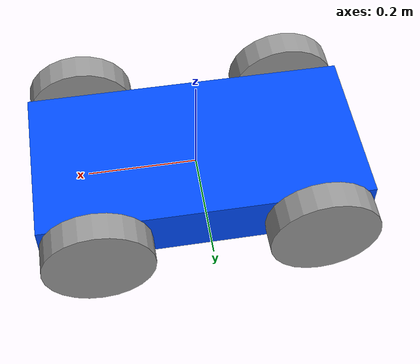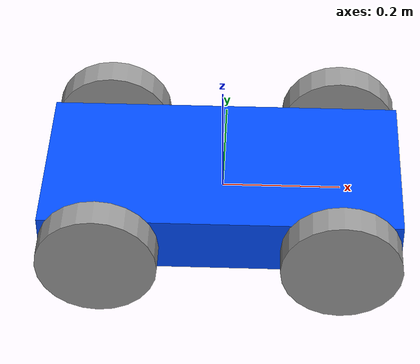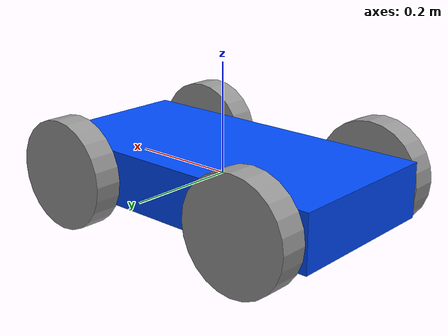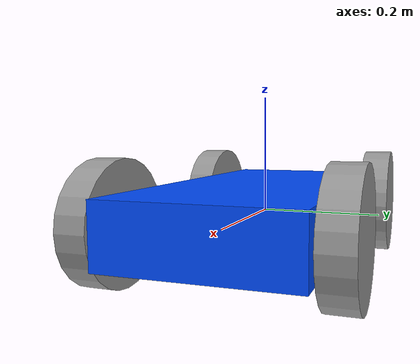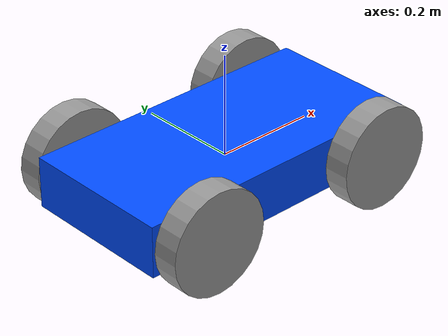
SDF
<?xml version='1.0'?>
<sdf version='1.6'>
  <model name='robot'>
    <static>false</static>
    <link name='chassis'>
      <inertial>
        <mass>1</mass>
        <inertia>
          <ixx>0.166667</ixx>
          <ixy>0</ixy>
          <ixz>0</ixz>
          <iyy>0.166667</iyy>
          <iyz>0</iyz>
          <izz>0.166667</izz>
        </inertia>
        <pose frame=''>0 0 0 0 -0 0</pose>
      </inertial>
      <pose frame=''>-0 0 0 0 -0 0</pose>
      <gravity>1</gravity>
      <self_collide>0</self_collide>
      <kinematic>0</kinematic>
      <enable_wind>0</enable_wind>
      <visual name='visual'>
        <pose frame=''>0 0 0 0 -0 0</pose>
        <geometry>
          <box>
            <size>0.6 0.3 0.1</size>
          </box>
        </geometry>
        <material>
          <lighting>1</lighting>
          <script>
            <uri>file://media/materials/scripts/gazebo.material</uri>
            <name>Gazebo/Grey</name>
          </script>
          <shader type='vertex'>
            <normal_map>__default__</normal_map>
          </shader>
          <ambient>0.3 0.3 0.3 1</ambient>
          <diffuse>0 0.298 1 1</diffuse>
          <specular>0.01 0.01 0.01 1</specular>
          <emissive>0 0 0 1</emissive>
        </material>
        <transparency>0</transparency>
        <cast_shadows>1</cast_shadows>
      </visual>
      <collision name='collision'>
        <laser_retro>0</laser_retro>
        <max_contacts>10</max_contacts>
        <pose frame=''>0 0 0 0 -0 0</pose>
        <geometry>
          <box>
            <size>0.6 0.3 0.1</size>
          </box>
        </geometry>
        <surface>
          <friction>
            <ode>
              <mu>1</mu>
              <mu2>1</mu2>
              <fdir1>0 0 0</fdir1>
              <slip1>0</slip1>
              <slip2>0</slip2>
            </ode>
            <torsional>
              <coefficient>1</coefficient>
              <patch_radius>0</patch_radius>
              <surface_radius>0</surface_radius>
              <use_patch_radius>1</use_patch_radius>
              <ode>
                <slip>0</slip>
              </ode>
            </torsional>
          </friction>
          <bounce>
            <restitution_coefficient>0</restitution_coefficient>
            <threshold>1e+06</threshold>
          </bounce>
          <contact>
            <collide_without_contact>0</collide_without_contact>
            <collide_without_contact_bitmask>1</collide_without_contact_bitmask>
            <collide_bitmask>1</collide_bitmask>
            <ode>
              <soft_cfm>0</soft_cfm>
              <soft_erp>0.2</soft_erp>
              <kp>1e+13</kp>
              <kd>1</kd>
              <max_vel>0.01</max_vel>
              <min_depth>0</min_depth>
            </ode>
            <bullet>
              <split_impulse>1</split_impulse>
              <split_impulse_penetration_threshold>-0.01</split_impulse_penetration_threshold>
              <soft_cfm>0</soft_cfm>
              <soft_erp>0.2</soft_erp>
              <kp>1e+13</kp>
              <kd>1</kd>
            </bullet>
          </contact>
        </surface>
      </collision>
    </link>
    <link name='front_left'>
      <inertial>
        <mass>1</mass>
        <inertia>
          <ixx>0.145833</ixx>
          <ixy>0</ixy>
          <ixz>0</ixz>
          <iyy>0.145833</iyy>
          <iyz>0</iyz>
          <izz>0.125</izz>
        </inertia>
        <pose frame=''>0 0 0 0 -0 0</pose>
      </inertial>
      <pose frame=''>-0.2 -0.18016 0 1.57 -0 0</pose>
      <gravity>1</gravity>
      <self_collide>0</self_collide>
      <kinematic>0</kinematic>
      <enable_wind>0</enable_wind>
      <visual name='visual'>
        <pose frame=''>0 0 0 0 -0 0</pose>
        <geometry>
          <cylinder>
            <radius>0.1</radius>
            <length>0.05</length>
          </cylinder>
        </geometry>
        <material>
          <lighting>1</lighting>
          <script>
            <uri>file://media/materials/scripts/gazebo.material</uri>
            <name>Gazebo/Grey</name>
          </script>
          <shader type='vertex'>
            <normal_map>__default__</normal_map>
          </shader>
          <ambient>0.3 0.3 0.3 1</ambient>
          <diffuse>0 0 0 1</diffuse>
          <specular>0.01 0.01 0.01 1</specular>
          <emissive>0 0 0 1</emissive>
        </material>
        <transparency>0</transparency>
        <cast_shadows>1</cast_shadows>
      </visual>
      <collision name='collision'>
        <laser_retro>0</laser_retro>
        <max_contacts>10</max_contacts>
        <pose frame=''>0 0 0 0 -0 0</pose>
        <geometry>
          <cylinder>
            <radius>0.1</radius>
            <length>0.05</length>
          </cylinder>
        </geometry>
        <surface>
          <friction>
            <ode>
              <mu>1</mu>
              <mu2>1</mu2>
              <fdir1>0 0 0</fdir1>
              <slip1>0</slip1>
              <slip2>0</slip2>
            </ode>
            <torsional>
              <coefficient>1</coefficient>
              <patch_radius>0</patch_radius>
              <surface_radius>0</surface_radius>
              <use_patch_radius>1</use_patch_radius>
              <ode>
                <slip>0</slip>
              </ode>
            </torsional>
          </friction>
          <bounce>
            <restitution_coefficient>0</restitution_coefficient>
            <threshold>1e+06</threshold>
          </bounce>
          <contact>
            <collide_without_contact>0</collide_without_contact>
            <collide_without_contact_bitmask>1</collide_without_contact_bitmask>
            <collide_bitmask>1</collide_bitmask>
            <ode>
              <soft_cfm>0</soft_cfm>
              <soft_erp>0.2</soft_erp>
              <kp>1e+13</kp>
              <kd>1</kd>
              <max_vel>0.01</max_vel>
              <min_depth>0</min_depth>
            </ode>
            <bullet>
              <split_impulse>1</split_impulse>
              <split_impulse_penetration_threshold>-0.01</split_impulse_penetration_threshold>
              <soft_cfm>0</soft_cfm>
              <soft_erp>0.2</soft_erp>
              <kp>1e+13</kp>
              <kd>1</kd>
            </bullet>
          </contact>
        </surface>
      </collision>
    </link>
    <link name='front_right'>
      <inertial>
        <mass>1</mass>
        <inertia>
          <ixx>0.145833</ixx>
          <ixy>0</ixy>
          <ixz>0</ixz>
          <iyy>0.145833</iyy>
          <iyz>0</iyz>
          <izz>0.125</izz>
        </inertia>
        <pose frame=''>0 0 0 0 -0 0</pose>
      </inertial>
      <pose frame=''>-0.2 0.18016 0 1.57 -0 0</pose>
      <gravity>1</gravity>
      <self_collide>0</self_collide>
      <kinematic>0</kinematic>
      <enable_wind>0</enable_wind>
      <visual name='visual'>
        <pose frame=''>0 0 0 0 -0 0</pose>
        <geometry>
          <cylinder>
            <radius>0.1</radius>
            <length>0.05</length>
          </cylinder>
        </geometry>
        <material>
          <lighting>1</lighting>
          <script>
            <uri>file://media/materials/scripts/gazebo.material</uri>
            <name>Gazebo/Grey</name>
          </script>
          <shader type='vertex'>
            <normal_map>__default__</normal_map>
          </shader>
          <ambient>0.3 0.3 0.3 1</ambient>
          <diffuse>0 0 0 1</diffuse>
          <specular>0.01 0.01 0.01 1</specular>
          <emissive>0 0 0 1</emissive>
        </material>
        <transparency>0</transparency>
        <cast_shadows>1</cast_shadows>
      </visual>
      <collision name='collision'>
        <laser_retro>0</laser_retro>
        <max_contacts>10</max_contacts>
        <pose frame=''>0 0 0 0 -0 0</pose>
        <geometry>
          <cylinder>
            <radius>0.1</radius>
            <length>0.05</length>
          </cylinder>
        </geometry>
        <surface>
          <friction>
            <ode>
              <mu>1</mu>
              <mu2>1</mu2>
              <fdir1>0 0 0</fdir1>
              <slip1>0</slip1>
              <slip2>0</slip2>
            </ode>
            <torsional>
              <coefficient>1</coefficient>
              <patch_radius>0</patch_radius>
              <surface_radius>0</surface_radius>
              <use_patch_radius>1</use_patch_radius>
              <ode>
                <slip>0</slip>
              </ode>
            </torsional>
          </friction>
          <bounce>
            <restitution_coefficient>0</restitution_coefficient>
            <threshold>1e+06</threshold>
          </bounce>
          <contact>
            <collide_without_contact>0</collide_without_contact>
            <collide_without_contact_bitmask>1</collide_without_contact_bitmask>
            <collide_bitmask>1</collide_bitmask>
            <ode>
              <soft_cfm>0</soft_cfm>
              <soft_erp>0.2</soft_erp>
              <kp>1e+13</kp>
              <kd>1</kd>
              <max_vel>0.01</max_vel>
              <min_depth>0</min_depth>
            </ode>
            <bullet>
              <split_impulse>1</split_impulse>
              <split_impulse_penetration_threshold>-0.01</split_impulse_penetration_threshold>
              <soft_cfm>0</soft_cfm>
              <soft_erp>0.2</soft_erp>
              <kp>1e+13</kp>
              <kd>1</kd>
            </bullet>
          </contact>
        </surface>
      </collision>
    </link>
    <link name='rear_left'>
      <inertial>
        <mass>1</mass>
        <inertia>
          <ixx>0.145833</ixx>
          <ixy>0</ixy>
          <ixz>0</ixz>
          <iyy>0.145833</iyy>
          <iyz>0</iyz>
          <izz>0.125</izz>
        </inertia>
        <pose frame=''>0 0 0 0 -0 0</pose>
      </inertial>
      <pose frame=''>0.2 -0.18016 0 1.57 -0 0</pose>
      <gravity>1</gravity>
      <self_collide>0</self_collide>
      <kinematic>0</kinematic>
      <enable_wind>0</enable_wind>
      <visual name='visual'>
        <pose frame=''>0 0 0 0 -0 0</pose>
        <geometry>
          <cylinder>
            <radius>0.1</radius>
            <length>0.05</length>
          </cylinder>
        </geometry>
        <material>
          <lighting>1</lighting>
          <script>
            <uri>file://media/materials/scripts/gazebo.material</uri>
            <name>Gazebo/Grey</name>
          </script>
          <shader type='vertex'>
            <normal_map>__default__</normal_map>
          </shader>
          <ambient>0.3 0.3 0.3 1</ambient>
          <diffuse>0 0 0 1</diffuse>
          <specular>0.01 0.01 0.01 1</specular>
          <emissive>0 0 0 1</emissive>
        </material>
        <transparency>0</transparency>
        <cast_shadows>1</cast_shadows>
      </visual>
      <collision name='collision'>
        <laser_retro>0</laser_retro>
        <max_contacts>10</max_contacts>
        <pose frame=''>0 0 0 0 -0 0</pose>
        <geometry>
          <cylinder>
            <radius>0.1</radius>
            <length>0.05</length>
          </cylinder>
        </geometry>
        <surface>
          <friction>
            <ode>
              <mu>1</mu>
              <mu2>1</mu2>
              <fdir1>0 0 0</fdir1>
              <slip1>0</slip1>
              <slip2>0</slip2>
            </ode>
            <torsional>
              <coefficient>1</coefficient>
              <patch_radius>0</patch_radius>
              <surface_radius>0</surface_radius>
              <use_patch_radius>1</use_patch_radius>
              <ode>
                <slip>0</slip>
              </ode>
            </torsional>
          </friction>
          <bounce>
            <restitution_coefficient>0</restitution_coefficient>
            <threshold>1e+06</threshold>
          </bounce>
          <contact>
            <collide_without_contact>0</collide_without_contact>
            <collide_without_contact_bitmask>1</collide_without_contact_bitmask>
            <collide_bitmask>1</collide_bitmask>
            <ode>
              <soft_cfm>0</soft_cfm>
              <soft_erp>0.2</soft_erp>
              <kp>1e+13</kp>
              <kd>1</kd>
              <max_vel>0.01</max_vel>
              <min_depth>0</min_depth>
            </ode>
            <bullet>
              <split_impulse>1</split_impulse>
              <split_impulse_penetration_threshold>-0.01</split_impulse_penetration_threshold>
              <soft_cfm>0</soft_cfm>
              <soft_erp>0.2</soft_erp>
              <kp>1e+13</kp>
              <kd>1</kd>
            </bullet>
          </contact>
        </surface>
      </collision>
    </link>
    <link name='rear_right'>
      <inertial>
        <mass>1</mass>
        <inertia>
          <ixx>0.145833</ixx>
          <ixy>0</ixy>
          <ixz>0</ixz>
          <iyy>0.145833</iyy>
          <iyz>0</iyz>
          <izz>0.125</izz>
        </inertia>
        <pose frame=''>0 0 0 0 -0 0</pose>
      </inertial>
      <pose frame=''>0.2 0.18016 0 1.57 -0 0</pose>
      <gravity>1</gravity>
      <self_collide>0</self_collide>
      <kinematic>0</kinematic>
      <enable_wind>0</enable_wind>
      <visual name='visual'>
        <pose frame=''>0 0 0 0 -0 0</pose>
        <geometry>
          <cylinder>
            <radius>0.1</radius>
            <length>0.05</length>
          </cylinder>
        </geometry>
        <material>
          <lighting>1</lighting>
          <script>
            <uri>file://media/materials/scripts/gazebo.material</uri>
            <name>Gazebo/Grey</name>
          </script>
          <shader type='vertex'>
            <normal_map>__default__</normal_map>
          </shader>
          <ambient>0.3 0.3 0.3 1</ambient>
          <diffuse>0 0 0 1</diffuse>
          <specular>0.01 0.01 0.01 1</specular>
          <emissive>0 0 0 1</emissive>
        </material>
        <transparency>0</transparency>
        <cast_shadows>1</cast_shadows>
      </visual>
      <collision name='collision'>
        <laser_retro>0</laser_retro>
        <max_contacts>10</max_contacts>
        <pose frame=''>0 0 0 0 -0 0</pose>
        <geometry>
          <cylinder>
            <radius>0.1</radius>
            <length>0.05</length>
          </cylinder>
        </geometry>
        <surface>
          <friction>
            <ode>
              <mu>1</mu>
              <mu2>1</mu2>
              <fdir1>0 0 0</fdir1>
              <slip1>0</slip1>
              <slip2>0</slip2>
            </ode>
            <torsional>
              <coefficient>1</coefficient>
              <patch_radius>0</patch_radius>
              <surface_radius>0</surface_radius>
              <use_patch_radius>1</use_patch_radius>
              <ode>
                <slip>0</slip>
              </ode>
            </torsional>
          </friction>
          <bounce>
            <restitution_coefficient>0</restitution_coefficient>
            <threshold>1e+06</threshold>
          </bounce>
          <contact>
            <collide_without_contact>0</collide_without_contact>
            <collide_without_contact_bitmask>1</collide_without_contact_bitmask>
            <collide_bitmask>1</collide_bitmask>
            <ode>
              <soft_cfm>0</soft_cfm>
              <soft_erp>0.2</soft_erp>
              <kp>1e+13</kp>
              <kd>1</kd>
              <max_vel>0.01</max_vel>
              <min_depth>0</min_depth>
            </ode>
            <bullet>
              <split_impulse>1</split_impulse>
              <split_impulse_penetration_threshold>-0.01</split_impulse_penetration_threshold>
              <soft_cfm>0</soft_cfm>
              <soft_erp>0.2</soft_erp>
              <kp>1e+13</kp>
              <kd>1</kd>
            </bullet>
          </contact>
        </surface>
      </collision>
    </link>
    <joint name='front_left_joint' type='revolute'>
      <parent>chassis</parent>
      <child>front_left</child>
      <pose frame=''>0 -0 -0 0 -0 0</pose>
      <axis>
        <xyz>0 0 1</xyz>
        <use_parent_model_frame>0</use_parent_model_frame>
        <limit>
          <lower>-1.79769e+308</lower>
          <upper>1.79769e+308</upper>
          <effort>-1</effort>
          <velocity>-1</velocity>
        </limit>
        <dynamics>
          <spring_reference>0</spring_reference>
          <spring_stiffness>0</spring_stiffness>
          <damping>0</damping>
          <friction>0</friction>
        </dynamics>
      </axis>
      <physics>
        <ode>
          <limit>
            <cfm>0</cfm>
            <erp>0.2</erp>
          </limit>
          <suspension>
            <cfm>0</cfm>
            <erp>0.2</erp>
          </suspension>
        </ode>
      </physics>
    </joint>
    <joint name='front_right_joint' type='revolute'>
      <parent>chassis</parent>
      <child>front_right</child>
      <pose frame=''>0 0 0 0 -0 0</pose>
      <axis>
        <xyz>0 0 1</xyz>
        <use_parent_model_frame>0</use_parent_model_frame>
        <limit>
          <lower>-1.79769e+308</lower>
          <upper>1.79769e+308</upper>
          <effort>-1</effort>
          <velocity>-1</velocity>
        </limit>
        <dynamics>
          <spring_reference>0</spring_reference>
          <spring_stiffness>0</spring_stiffness>
          <damping>0</damping>
        </dynamics>
      </axis>
      <physics>
        <ode>
          <limit>
            <cfm>0</cfm>
            <erp>0.2</erp>
          </limit>
          <suspension>
            <cfm>0</cfm>
            <erp>0.2</erp>
          </suspension>
        </ode>
      </physics>
    </joint>
    <joint name='rear_left_joint' type='revolute'>
      <parent>chassis</parent>
      <child>rear_left</child>
      <pose frame=''>0 0 0 0 -0 0</pose>
      <axis>
        <xyz>0 0 1</xyz>
        <use_parent_model_frame>0</use_parent_model_frame>
        <limit>
          <lower>-1.79769e+308</lower>
          <upper>1.79769e+308</upper>
          <effort>-1</effort>
          <velocity>-1</velocity>
        </limit>
        <dynamics>
          <spring_reference>0</spring_reference>
          <spring_stiffness>0</spring_stiffness>
          <damping>0</damping>
        </dynamics>
      </axis>
      <physics>
        <ode>
          <limit>
            <cfm>0</cfm>
            <erp>0.2</erp>
          </limit>
          <suspension>
            <cfm>0</cfm>
            <erp>0.2</erp>
          </suspension>
        </ode>
      </physics>
    </joint>
    <joint name='rear_right_joint' type='revolute'>
      <parent>chassis</parent>
      <child>rear_right</child>
      <pose frame=''>0 0 0 0 -0 0</pose>
      <axis>
        <xyz>0 0 1</xyz>
        <use_parent_model_frame>0</use_parent_model_frame>
        <limit>
          <lower>-1.79769e+308</lower>
          <upper>1.79769e+308</upper>
          <effort>-1</effort>
          <velocity>-1</velocity>
        </limit>
        <dynamics>
          <spring_reference>0</spring_reference>
          <spring_stiffness>0</spring_stiffness>
          <damping>0</damping>
        </dynamics>
      </axis>
      <physics>
        <ode>
          <limit>
            <cfm>0</cfm>
            <erp>0.2</erp>
          </limit>
          <suspension>
            <cfm>0</cfm>
            <erp>0.2</erp>
          </suspension>
        </ode>
      </physics>
    </joint>
    <static>0</static>
    <allow_auto_disable>1</allow_auto_disable>
  </model>
</sdf>
